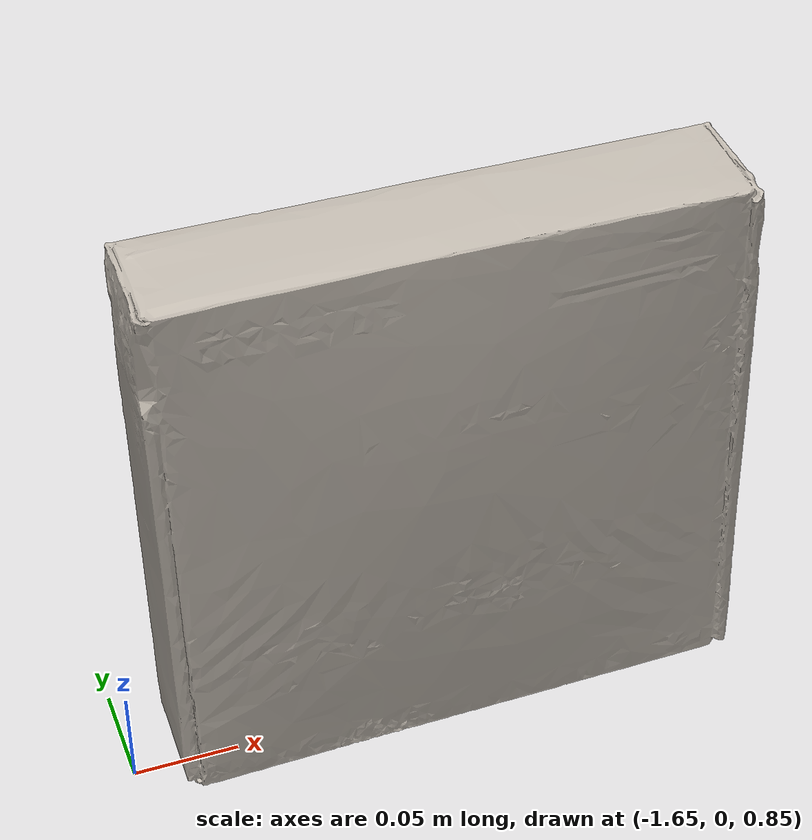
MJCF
<mujoco model="obj">
  <default>
    <default class="obj/visual">
      <geom group="2" type="mesh" contype="0" conaffinity="0"/>
    </default>
    <default class="obj/collision">
      <geom group="3" type="mesh"/>
    </default>
  </default>
  <asset>
    <texture type="2d" name="img0" file="objects/00/img0.png"/>
    <material name="material_0" texture="img0" specular="0.0" shininess="0.0"/>
    <mesh file="objects/00/00.obj"/>
  </asset>
  <worldbody>
    <body name="obj" pos="-1.5 0 1">
      <joint name="obj_jnt" type="ball"/>
      <geom material="material_0" mesh="00" class="obj/visual"/>
      <geom mesh="00" class="obj/collision" mass="0.5"/>
    </body>
  </worldbody>
</mujoco>
